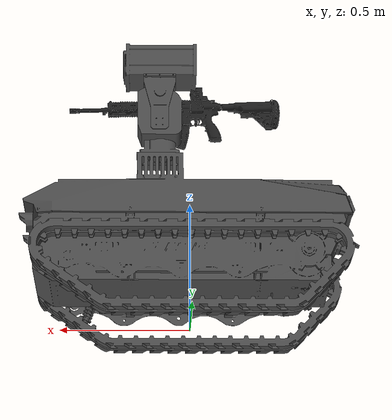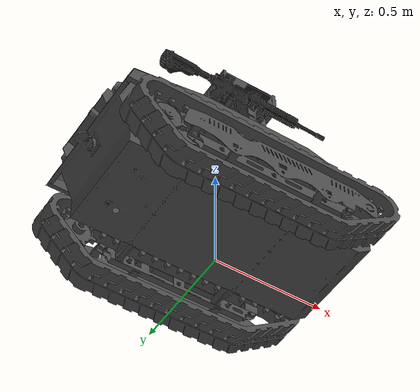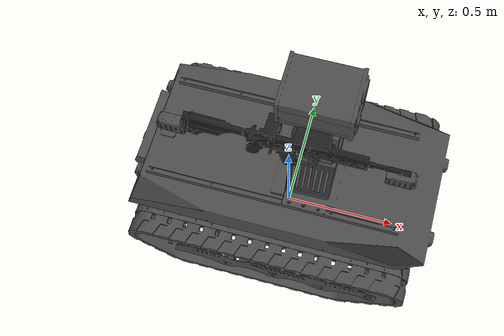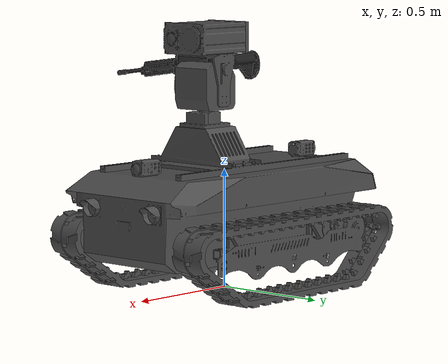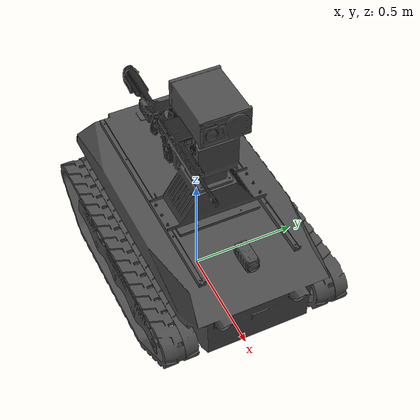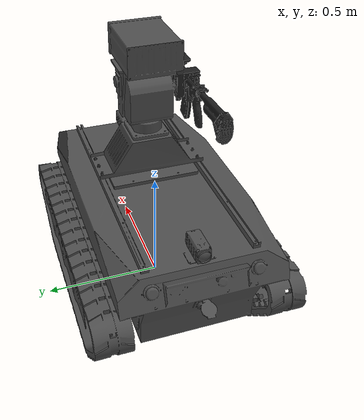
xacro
<?xml version="1.0"?>
<robot xmlns:xacro="http://www.ros.org/wiki/xacro" name="combat_robot">

  <xacro:include filename="$(find combat_robot_description)/urdf/macros.xacro" />
  <xacro:include filename="$(find combat_robot_description)/urdf/materials.xacro" />

  <xacro:include filename="$(find combat_robot_description)/urdf/chassis.xacro" />
  <xacro:include filename="$(find combat_robot_description)/urdf/gimbal.xacro" />
  <xacro:include filename="$(find combat_robot_description)/urdf/camera.xacro" />
  <xacro:include filename="$(find combat_robot_description)/urdf/chassis_cameras.xacro"/>
  <xacro:include filename="$(find combat_robot_description)/urdf/rifle.xacro" />

  <xacro:include filename="$(find combat_robot_description)/urdf/sensors.xacro" />

  <xacro:include filename="$(find combat_robot_description)/urdf/gazebo.xacro" />
  <xacro:include filename="$(find combat_robot_description)/urdf/gazebo_control.xacro" />

</robot>

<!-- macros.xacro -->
<robot xmlns:xacro="http://www.ros.org/wiki/xacro">
    <!-- Macro for inertia of a box -->
    <xacro:macro name="box_inertia" params="m x y z">
        <inertia ixx="${m*(y*y+z*z)/12}" ixy="0" ixz="0"
            iyy="${m*(x*x+z*z)/12}" iyz="0"
            izz="${m*(x*x+y*y)/12}" />
    </xacro:macro>

    <!-- Macro for inertia of a cylinder -->
    <xacro:macro name="cylinder_inertia" params="m r l">
        <inertia ixx="${m*(3*r*r+l*l)/12}" ixy="0" ixz="0"
            iyy="${m*(3*r*r+l*l)/12}" iyz="0"
            izz="${m*r*r/2}" />
    </xacro:macro>

    <!-- Macro for hidden wheel -->
    <xacro:macro name="hidden_wheel" params="name x_pos y_pos z_pos">
        <link name="${name}">
            <collision>
                <origin xyz="0 0 0" rpy="${pi/2} 0 0" />
                <geometry>
                    <cylinder radius="${wheel_radius}" length="${wheel_width}" />
                </geometry>
            </collision>
            <inertial>
                <origin xyz="0 0 0" rpy="0 0 0" />
                <mass value="${wheel_mass}" />
                <xacro:cylinder_inertia m="${wheel_mass}" r="${wheel_radius}" l="${wheel_width}" />
            </inertial>
        </link>

        <joint name="${name}_joint" type="continuous">
            <parent link="base_link" />
            <child link="${name}" />
            <origin xyz="${x_pos} ${y_pos} ${z_pos}" rpy="0 0 0" />
            <axis xyz="0 1 0" />
        </joint>
    </xacro:macro>

</robot>

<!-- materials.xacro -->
<robot xmlns:xacro="http://www.ros.org/wiki/xacro">

  <!-- Material Definitions -->

  <material name="dark_gray">
    <color rgba="0.3 0.3 0.3 1.0"/>
  </material>

  <material name="light_gray">
    <color rgba="0.6 0.6 0.6 1.0"/>
  </material>

  <material name="black">
    <color rgba="0.1 0.1 0.1 1.0"/>
  </material>

  <material name="white">
    <color rgba="1.0 1.0 1.0 1.0"/>
  </material>

  <material name="red">
    <color rgba="0.8 0.0 0.0 1.0"/>
  </material>

  <material name="green">
    <color rgba="0.0 0.8 0.0 1.0"/>
  </material>

  <material name="blue">
    <color rgba="0.0 0.0 0.8 1.0"/>
  </material>

  <material name="yellow">
    <color rgba="1.0 1.0 0.0 1.0"/>
  </material>

</robot>

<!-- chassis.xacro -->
<robot xmlns:xacro="http://www.ros.org/wiki/xacro" name="combat_robot">

  <xacro:property name="mesh_scale" value="1 1 1" />

  <xacro:property name="chassis_length" value="1.314" />
  <xacro:property name="chassis_width" value="0.837" />
  <xacro:property name="chassis_height" value="0.606" />
  <xacro:property name="chassis_mass" value="20.0" />

  <xacro:property name="track_length" value="1.214" />
  <xacro:property name="track_width" value="0.150" />
  <xacro:property name="track_height" value="0.334" />
  <xacro:property name="track_mass" value="0.01" />

  <xacro:property name="track_collision_height" value="0.297" />
  <xacro:property name="track_collision_z_offset" value="0.019" />

  <xacro:property name="track_y_offset" value="0.35" />
  <xacro:property name="track_z_offset" value="-0.22" />

  <xacro:property name="wheel_radius" value="0.12" />
  <xacro:property name="wheel_width" value="0.10" />
  <xacro:property name="wheel_mass" value="1.0" />

  <xacro:property name="wheel_front_x" value="0.40" />
  <xacro:property name="wheel_mid_x" value="0.0" />
  <xacro:property name="wheel_rear_x" value="-0.40" />
  <xacro:property name="wheel_z" value="-0.27" />

  <link name="base_footprint" />

  <joint name="base_footprint_joint" type="fixed">
    <parent link="base_footprint" />
    <child link="base_link" />
    <origin xyz="0 0 0.387" rpy="0 0 0" />
  </joint>

  <link name="base_link">
    <visual>
      <origin xyz="0 0 0" rpy="0 0 0" />
      <geometry>
        <mesh filename="package://combat_robot_description/meshes/chassis.dae" scale="${mesh_scale}" />
      </geometry>
      <material name="dark_gray" />
    </visual>
    <collision>
      <origin xyz="0 0 0" rpy="0 0 0" />
      <geometry>
        <box size="${chassis_length} ${chassis_width} ${chassis_height}" />
      </geometry>
    </collision>
    <inertial>
      <origin xyz="0 0 0" rpy="0 0 0" />
      <mass value="${chassis_mass}" />
      <xacro:box_inertia m="${chassis_mass}" x="${chassis_length}" y="${chassis_width}" z="${chassis_height}" />
    </inertial>
  </link>

  <link name="left_track_visual">
    <visual>
      <origin xyz="0 0 0" rpy="0 0 0" />
      <geometry>
        <mesh filename="package://combat_robot_description/meshes/left_track.dae" scale="${mesh_scale}" />
      </geometry>
      <material name="dark_gray" />
    </visual>
    <collision>
      <origin xyz="0 0 ${track_collision_z_offset}" rpy="0 0 0" />
      <geometry>
        <box size="${track_length} ${track_width} ${track_collision_height}" />
      </geometry>
    </collision>
    <inertial>
      <mass value="${track_mass}" />
      <xacro:box_inertia m="${track_mass}" x="${track_length}" y="${track_width}" z="${track_height}" />
    </inertial>
  </link>

  <joint name="left_track_visual_joint" type="fixed">
    <parent link="base_link" />
    <child link="left_track_visual" />
    <origin xyz="0 ${track_y_offset} ${track_z_offset}" rpy="0 0 0" />
  </joint>

  <link name="right_track_visual">
    <visual>
      <origin xyz="0 0 0" rpy="0 0 0" />
      <geometry>
        <mesh filename="package://combat_robot_description/meshes/right_track.dae" scale="${mesh_scale}" />
      </geometry>
      <material name="dark_gray" />
    </visual>
    <collision>
      <origin xyz="0 0 ${track_collision_z_offset}" rpy="0 0 0" />
      <geometry>
        <box size="${track_length} ${track_width} ${track_collision_height}" />
      </geometry>
    </collision>
    <inertial>
      <mass value="${track_mass}" />
      <xacro:box_inertia m="${track_mass}" x="${track_length}" y="${track_width}" z="${track_height}" />
    </inertial>
  </link>

  <joint name="right_track_visual_joint" type="fixed">
    <parent link="base_link" />
    <child link="right_track_visual" />
    <origin xyz="0 ${-track_y_offset} ${track_z_offset}" rpy="0 0 0" />
  </joint>

  <xacro:hidden_wheel name="left_front_wheel" x_pos="${wheel_front_x}" y_pos="${track_y_offset}" z_pos="${wheel_z}" />
  <xacro:hidden_wheel name="left_mid_wheel" x_pos="${wheel_mid_x}" y_pos="${track_y_offset}" z_pos="${wheel_z}" />
  <xacro:hidden_wheel name="left_rear_wheel" x_pos="${wheel_rear_x}" y_pos="${track_y_offset}" z_pos="${wheel_z}" />
  <xacro:hidden_wheel name="right_front_wheel" x_pos="${wheel_front_x}" y_pos="${-track_y_offset}" z_pos="${wheel_z}" />
  <xacro:hidden_wheel name="right_mid_wheel" x_pos="${wheel_mid_x}" y_pos="${-track_y_offset}" z_pos="${wheel_z}" />
  <xacro:hidden_wheel name="right_rear_wheel" x_pos="${wheel_rear_x}" y_pos="${-track_y_offset}" z_pos="${wheel_z}" />

</robot>

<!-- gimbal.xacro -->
<robot xmlns:xacro="http://www.ros.org/wiki/xacro" name="gimbal">

  <!-- Gimbal Base dimensions(meters) -->
  <xacro:property name="gimbal_base_x" value="0.155" />
  <xacro:property name="gimbal_base_y" value="0.155" />
  <xacro:property name="gimbal_base_z" value="0.073" />
  <xacro:property name="gimbal_base_mass" value="0.5" />

  <!-- Gimbal Pan dimensions(meters) -->
  <xacro:property name="gimbal_pan_x" value="0.180" />
  <xacro:property name="gimbal_pan_y" value="0.172" />
  <xacro:property name="gimbal_pan_z" value="0.194" />
  <xacro:property name="gimbal_pan_mass" value="0.8" />

  <!-- Gimbal Tilt dimensions(meters) -->
  <xacro:property name="gimbal_tilt_x" value="0.125" />
  <xacro:property name="gimbal_tilt_y" value="0.256" />
  <xacro:property name="gimbal_tilt_z" value="0.219" />
  <xacro:property name="gimbal_tilt_mass" value="0.5" />

  <!-- Joint offsets(meters) -->
  <xacro:property name="pan_joint_z" value="0.133" />
  <xacro:property name="tilt_joint_z" value="0.028" />

  <!-- Gimbal Damping and Friction -->
  <xacro:property name="gimbal_damping" value="5" />
  <xacro:property name="gimbal_friction" value="0.1" />

  <!-- Pan joint limits -->
  <xacro:property name="pan_lower" value="${-pi}" />
  <xacro:property name="pan_upper" value="${pi}" />
  <xacro:property name="pan_effort" value="10" />
  <xacro:property name="pan_velocity" value="1.0" />

  <!-- Tilt joint limits -->
  <xacro:property name="tilt_lower" value="${-pi/4}" />
  <xacro:property name="tilt_upper" value="${pi/4}" />
  <xacro:property name="tilt_effort" value="10" />
  <xacro:property name="tilt_velocity" value="1.0" />

  <!-- ============ BASE ============ -->
  <link name="gimbal_base_link">
    <visual>
      <origin xyz="0 0 0" rpy="0 0 0" />
      <geometry>
        <mesh filename="package://combat_robot_description/meshes/gimbal_base.dae" />
      </geometry>
    </visual>
    <collision>
      <geometry>
        <box size="${gimbal_base_x} ${gimbal_base_y} ${gimbal_base_z}" />
      </geometry>
    </collision>
    <inertial>
      <mass value="${gimbal_base_mass}" />
      <xacro:box_inertia m="${gimbal_base_mass}" x="${gimbal_base_x}" y="${gimbal_base_y}"
        z="${gimbal_base_z}" />
    </inertial>
  </link>

  <!-- ============ PAN ============ -->
  <link name="gimbal_pan_link">
    <visual>
      <origin xyz="0 0 0" rpy="0 0 0" />
      <geometry>
        <mesh filename="package://combat_robot_description/meshes/gimbal_pan.dae" />
      </geometry>
    </visual>
    <collision>
      <geometry>
        <box size="${gimbal_pan_x} ${gimbal_pan_y} ${gimbal_pan_z}" />
      </geometry>
    </collision>
    <inertial>
      <mass value="${gimbal_pan_mass}" />
      <xacro:box_inertia m="${gimbal_pan_mass}" x="${gimbal_pan_x}" y="${gimbal_pan_y}"
        z="${gimbal_pan_z}" />
    </inertial>
  </link>

  <joint name="gimbal_pan_joint" type="revolute">
    <parent link="gimbal_base_link" />
    <child link="gimbal_pan_link" />
    <origin xyz="0 0 ${pan_joint_z}" rpy="0 0 0" />
    <axis xyz="0 0 1" />
    <limit lower="${pan_lower}" upper="${pan_upper}" effort="${pan_effort}" velocity="${pan_velocity}" />
    <dynamics damping="${gimbal_damping}" friction="${gimbal_friction}" />
  </joint>

  <!-- ============ TILT ============ -->
  <link name="gimbal_tilt_link">
    <visual>
      <origin xyz="0 0 0" rpy="0 0 0" />
      <geometry>
        <mesh filename="package://combat_robot_description/meshes/gimbal_tilt.dae" />
      </geometry>
    </visual>
    <collision>
      <geometry>
        <box size="${gimbal_tilt_x} ${gimbal_tilt_y} ${gimbal_tilt_z}" />
      </geometry>
    </collision>
    <inertial>
      <mass value="${gimbal_tilt_mass}" />
      <xacro:box_inertia m="${gimbal_tilt_mass}" x="${gimbal_tilt_x}" y="${gimbal_tilt_y}"
        z="${gimbal_tilt_z}" />
    </inertial>
  </link>

  <joint name="gimbal_tilt_joint" type="revolute">
    <parent link="gimbal_pan_link" />
    <child link="gimbal_tilt_link" />
    <origin xyz="0 0 ${tilt_joint_z}" rpy="0 0 0" />
    <axis xyz="0 1 0" />
    <limit lower="${tilt_lower}" upper="${tilt_upper}" effort="${tilt_effort}" velocity="${tilt_velocity}" />
    <dynamics damping="${gimbal_damping}" friction="${gimbal_friction}" />
  </joint>
  <!-- ========== Gimbal Base to Baselink  ========== -->
  <joint name="gimbal_base_joint" type="fixed">
    <parent link="base_link" />
    <child link="gimbal_base_link" />
    <origin xyz="0.12  0  0.3395" rpy="0 0 0" />
  </joint>
</robot>

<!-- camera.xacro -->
<robot xmlns:xacro="http://www.ros.org/wiki/xacro" name="camera_holder">
    <!-- Camera holder dimensions(meters) -->
    <xacro:property name="camera_holder_x" value="0.287" />
    <xacro:property name="camera_holder_y" value="0.295" />
    <xacro:property name="camera_holder_z" value="0.130" />
    <xacro:property name="camera_holder_mass" value="0.3" />
    <!-- Camera update rate: 30 (full fidelity) or 10 (optimized multi-robot) -->
    <xacro:property name="camera_fps" value="10" />
    <!-- Namespace configuration for multi-robot support -->
    <xacro:arg name="robot_ns" default="" />
    <xacro:property name="ns" value="$(arg robot_ns)" />
    <xacro:property name="topic_prefix" value="${'/' + ns if ns != '' else ''}" />
    <xacro:property name="frame_prefix" value="${ns + '/' if ns != '' else ''}" />

    <!--  CAMERA HOLDER LINK  -->
    <link name="camera_holder_link">
        <visual>
            <origin xyz="0 0 0" rpy="0 0 0" />
            <geometry>
                <mesh filename="package://combat_robot_description/meshes/camera_holder.dae" />
            </geometry>
        </visual>
        <collision>
            <geometry>
                <box size="${camera_holder_x} ${camera_holder_y} ${camera_holder_z}" />
            </geometry>
        </collision>
        <inertial>
            <mass value="${camera_holder_mass}" />
            <xacro:box_inertia m="${camera_holder_mass}" x="${camera_holder_x}"
                y="${camera_holder_y}" z="${camera_holder_z}" />
        </inertial>
    </link>

    <joint name="camera_holder_joint" type="fixed">
        <parent link="gimbal_tilt_link" />
        <child link="camera_holder_link" />
        <origin xyz="0 0.004 0.171" rpy="0 0 0" />
    </joint>

    <!-- RGB CAMERA LINK (sensor only) -->
    <link name="rgb_camera_link">
        <inertial>
            <mass value="0.01" />
            <inertia ixx="0.0001" ixy="0" ixz="0" iyy="0.0001" iyz="0" izz="0.0001" />
        </inertial>
    </link>

    <joint name="rgb_camera_joint" type="fixed">
        <parent link="camera_holder_link" />
        <child link="rgb_camera_link" />
        <!-- Update with actual RGB lens position from FreeCAD -->
        <origin xyz="0.14 -0.05 0" rpy="0 0 0" />
    </joint>

    <!-- IR CAMERA LINK (sensor only)  -->
    <link name="ir_camera_link">
        <inertial>
            <mass value="0.01" />
            <inertia ixx="0.0001" ixy="0" ixz="0" iyy="0.0001" iyz="0" izz="0.0001" />
        </inertial>
    </link>

    <joint name="ir_camera_joint" type="fixed">
        <parent link="camera_holder_link" />
        <child link="ir_camera_link" />
        <!---Update
        with actual IR lens position from FreeCAD -->
        <origin xyz="0.14 0.05 0" rpy="0 0 0" />
    </joint>

    <!--  RGB CAMERA OPTICAL FRAME  -->
    <link name="rgb_camera_optical_frame" />
    <joint name="rgb_camera_optical_joint" type="fixed">
        <parent link="rgb_camera_link" />
        <child link="rgb_camera_optical_frame" />
        <origin xyz="0 0 0" rpy="${-pi/2} 0 ${-pi/2}" />
    </joint>

    <!--  IR CAMERA OPTICAL FRAME  -->
    <link name="ir_camera_optical_frame" />
    <joint name="ir_camera_optical_joint" type="fixed">
        <parent link="ir_camera_link" />
        <child link="ir_camera_optical_frame" />
        <origin xyz="0 0 0" rpy="${-pi/2} 0 ${-pi/2}" />
    </joint>

    <!-- RGB CAMERA SENSOR -->
    <gazebo reference="rgb_camera_link">
        <sensor name="rgb_camera" type="camera">
            <always_on>true</always_on>
            <update_rate>${camera_fps}</update_rate>
            <topic>${topic_prefix}/rgb_camera/image_raw</topic>
            <gz_frame_id>${frame_prefix}rgb_camera_link</gz_frame_id>
            <camera>
                <horizontal_fov>1.047</horizontal_fov>
                <image>
                    <width>640</width>
                    <height>480</height>
                    <format>R8G8B8</format>
                </image>
                <clip>
                    <near>0.1</near>
                    <far>100</far>
                </clip>
                <noise>
                    <type>gaussian</type>
                    <mean>0.0</mean>
                    <stddev>0.007</stddev>
                </noise>
            </camera>
        </sensor>
    </gazebo>
    <!-- IR CAMERA SENSOR -->
    <gazebo reference="ir_camera_link">
        <sensor name="ir_camera" type="camera">
            <always_on>true</always_on>
            <update_rate>${camera_fps}</update_rate>
            <topic>${topic_prefix}/ir_camera/image_raw</topic>
            <gz_frame_id>${frame_prefix}ir_camera_link</gz_frame_id>
            <camera>
                <horizontal_fov>1.047</horizontal_fov>
                <image>
                    <width>640</width>
                    <height>480</height>
                    <format>L8</format>
                </image>
                <clip>
                    <near>0.1</near>
                    <far>100</far>
                </clip>
            </camera>
        </sensor>
    </gazebo>
</robot>

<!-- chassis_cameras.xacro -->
<robot xmlns:xacro="http://www.ros.org/wiki/xacro" name="chassis_cameras">

    <!-- Chassis camera properties -->
    <xacro:property name="chassis_cam_mass" value="0.05" />
    <xacro:property name="chassis_cam_fps" value="10" />
    <xacro:property name="chassis_length" value="1.314" />
    <xacro:property name="chassis_height" value="0.606" />

    <!-- Namespace configuration for multi-robot support -->
    <xacro:arg name="robot_ns" default="" />
    <xacro:property name="ns" value="$(arg robot_ns)" />
    <xacro:property name="topic_prefix" value="${'/' + ns if ns != '' else ''}" />
    <xacro:property name="frame_prefix" value="${ns + '/' if ns != '' else ''}" />

    <!-- ==================== FRONT CAMERA (Visual SLAM / Navigation) ==================== -->

    <link name="front_camera_link">
        <visual>
            <origin xyz="0 0 0" rpy="0 0 0" />
            <geometry>
                <mesh filename="package://combat_robot_description/meshes/camera.dae" />
            </geometry>
             <material name="dark_gray" />
        </visual>
        <collision>
            <geometry>
                <box size="0.055 0.064 0.123" />
            </geometry>
        </collision>
        <inertial>
            <mass value="${chassis_cam_mass}" />
            <inertia ixx="0.0001" ixy="0" ixz="0" iyy="0.0001" iyz="0" izz="0.0001" />
        </inertial>
    </link>

    <joint name="front_camera_joint" type="fixed">
        <parent link="base_link" />
        <child link="front_camera_link" />
         <origin xyz="0.47 0 0.16" rpy="0 0 0" />
    </joint>

    <!-- Front camera optical frame -->
    <link name="front_camera_optical_frame" />
    <joint name="front_camera_optical_joint" type="fixed">
        <parent link="front_camera_link" />
        <child link="front_camera_optical_frame" />
        <origin xyz="0 0 0" rpy="${-pi/2} 0 ${-pi/2}" />
    </joint>

    <!-- Front camera sensor (120° FOV) -->
    <gazebo reference="front_camera_link">
        <sensor name="front_camera" type="camera">
            <always_on>true</always_on>
            <update_rate>${chassis_cam_fps}</update_rate>
            <topic>${topic_prefix}/front_camera/image_raw</topic>
            <gz_frame_id>${frame_prefix}front_camera_link</gz_frame_id>
            <camera>
                <horizontal_fov>2.094</horizontal_fov>
                <image>
                    <width>640</width>
                    <height>480</height>
                    <format>R8G8B8</format>
                </image>
                <clip>
                    <near>0.1</near>
                    <far>100</far>
                </clip>
                <noise>
                    <type>gaussian</type>
                    <mean>0.0</mean>
                    <stddev>0.007</stddev>
                </noise>
            </camera>
        </sensor>
    </gazebo>

    <!-- ==================== REAR CAMERA (Visual SLAM / Navigation) ==================== -->

    <link name="rear_camera_link">
        <visual>
            <origin xyz="0 0 0" rpy="0 0 0" />
            <geometry>
                <mesh filename="package://combat_robot_description/meshes/camera.dae" />
            </geometry>
             <material name="dark_gray" />
        </visual>
        <collision>
            <geometry>
                <box size="0.055 0.064 0.123" />
            </geometry>
        </collision>
        <inertial>
            <mass value="${chassis_cam_mass}" />
            <inertia ixx="0.0001" ixy="0" ixz="0" iyy="0.0001" iyz="0" izz="0.0001" />
        </inertial>
    </link>

    <joint name="rear_camera_joint" type="fixed">
        <parent link="base_link" />
        <child link="rear_camera_link" />
          <origin xyz="-0.5 0 0.16" rpy="0 0 3.14159" />
    </joint>

    <!-- Rear camera optical frame -->
    <link name="rear_camera_optical_frame" />
    <joint name="rear_camera_optical_joint" type="fixed">
        <parent link="rear_camera_link" />
        <child link="rear_camera_optical_frame" />
        <origin xyz="0 0 0" rpy="${-pi/2} 0 ${-pi/2}" />
    </joint>

    <!-- Rear camera sensor (120° FOV) -->
    <gazebo reference="rear_camera_link">
        <sensor name="rear_camera" type="camera">
            <always_on>true</always_on>
            <update_rate>${chassis_cam_fps}</update_rate>
            <topic>${topic_prefix}/rear_camera/image_raw</topic>
            <gz_frame_id>${frame_prefix}rear_camera_link</gz_frame_id>
            <camera>
                <horizontal_fov>2.094</horizontal_fov>
                <image>
                    <width>640</width>
                    <height>480</height>
                    <format>R8G8B8</format>
                </image>
                <clip>
                    <near>0.1</near>
                    <far>100</far>
                </clip>
                <noise>
                    <type>gaussian</type>
                    <mean>0.0</mean>
                    <stddev>0.007</stddev>
                </noise>
            </camera>
        </sensor>
    </gazebo>

</robot>

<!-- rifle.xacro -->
<robot xmlns:xacro="http://www.ros.org/wiki/xacro" name="rifle_holder">

  <!-- Rifle along with holder dimensions -->
  <xacro:property name="rifle_x" value="0.837" />
  <xacro:property name="rifle_y" value="0.107" />
  <xacro:property name="rifle_z" value="0.275" />
  <xacro:property name="rifle_mass" value="1.0" />

  <!--  RIFLE LINK == -->
  <link name="rifle_link">
    <visual>
      <origin xyz="0 0 0" rpy="0 0 0" />
      <geometry>
        <mesh filename="package://combat_robot_description/meshes/rifle.dae" />
      </geometry>
    </visual>
    <collision>
      <geometry>
        <box size="${rifle_x} ${rifle_y} ${rifle_z}" />
      </geometry>
    </collision>
    <inertial>
      <mass value="${rifle_mass}" />
      <xacro:box_inertia m="${rifle_mass}" x="${rifle_x}" y="${rifle_y}"
        z="${rifle_z}" />
    </inertial>
  </link>

  <joint name="rifle_joint" type="fixed">
    <parent link="gimbal_tilt_link" />
    <child link="rifle_link" />
    <origin xyz="-0.06 -0.128 0.019" rpy="0 0 0" />
  </joint>

</robot>

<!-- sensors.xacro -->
<robot xmlns:xacro="http://www.ros.org/wiki/xacro">

  <link name="gnss_base_link">
    <inertial>
      <mass value="0.1"/>
      <origin xyz="0 0 0" rpy="0 0 0"/>
      <inertia ixx="0.001" ixy="0" ixz="0" iyy="0.001" iyz="0" izz="0.001"/>
    </inertial>
  </link>

  <joint name="gnss_joint" type="fixed">
    <parent link="base_link"/>
    <child link="gnss_base_link"/>
    <origin xyz="0 0 0.5" rpy="0 0 0"/> </joint>

  <gazebo reference="gnss_base_link">
    <sensor name="gnss_sensor" type="navsat">
      <always_on>true</always_on>
      <update_rate>10.0</update_rate>
      <topic>/sensing/gnss/nav_sat_fix</topic>
      <gz_frame_id>gnss_base_link</gz_frame_id>
    </sensor>
  </gazebo>

  <link name="imu_link">
    <inertial>
      <mass value="0.1"/>
      <origin xyz="0 0 0" rpy="0 0 0"/>
      <inertia ixx="0.001" ixy="0" ixz="0" iyy="0.001" iyz="0" izz="0.001"/>
    </inertial>
  </link>

  <joint name="imu_joint" type="fixed">
    <parent link="base_link"/>
    <child link="imu_link"/>
    <origin xyz="0 0 0.2" rpy="0 0 0"/> </joint>

  <gazebo reference="imu_link">
    <sensor name="imu_sensor" type="imu">
      <always_on>true</always_on>
      <update_rate>100.0</update_rate>
      <topic>/sensing/imu/imu_data</topic>
      <gz_frame_id>imu_link</gz_frame_id>
      <imu>
        <angular_velocity>
          <x><noise type="gaussian"><mean>0.0</mean><stddev>0.0001</stddev></noise></x>
          <y><noise type="gaussian"><mean>0.0</mean><stddev>0.0001</stddev></noise></y>
          <z><noise type="gaussian"><mean>0.0</mean><stddev>0.0001</stddev></noise></z>
        </angular_velocity>
        <linear_acceleration>
          <x><noise type="gaussian"><mean>0.0</mean><stddev>0.0001</stddev></noise></x>
          <y><noise type="gaussian"><mean>0.0</mean><stddev>0.0001</stddev></noise></y>
          <z><noise type="gaussian"><mean>0.0</mean><stddev>0.0001</stddev></noise></z>
        </linear_acceleration>
      </imu>
    </sensor>
  </gazebo>

  <link name="front_lidar_link">
    <inertial>
      <mass value="0.1"/>
      <origin xyz="0 0 0" rpy="0 0 0"/>
      <inertia ixx="0.001" ixy="0" ixz="0" iyy="0.001" iyz="0" izz="0.001"/>
    </inertial>
  </link>

  <joint name="front_lidar_joint" type="fixed">
    <parent link="base_link"/>
    <child link="front_lidar_link"/>
    <origin xyz="0.6 0 0.3" rpy="0 0 0"/> </joint>

  <gazebo reference="front_lidar_link">
    <sensor name="front_lidar_sensor" type="gpu_lidar">
      <always_on>true</always_on>
      <update_rate>10.0</update_rate>
      <topic>/front_lidar/scan/points</topic>
      <gz_frame_id>front_lidar_link</gz_frame_id>
      <visualize>false</visualize>
      <lidar>
        <scan>
          <horizontal>
            <samples>360</samples>
            <resolution>1.0</resolution>
            <min_angle>-3.14159</min_angle>
            <max_angle>3.14159</max_angle>
          </horizontal>
          <vertical>
            <samples>16</samples>
            <resolution>1.0</resolution>
            <min_angle>-0.26</min_angle>
            <max_angle>0.26</max_angle>
          </vertical>
        </scan>
        <range>
          <min>0.12</min>
          <max>30.0</max>
          <resolution>0.01</resolution>
        </range>
      </lidar>
    </sensor>
  </gazebo>

</robot>
